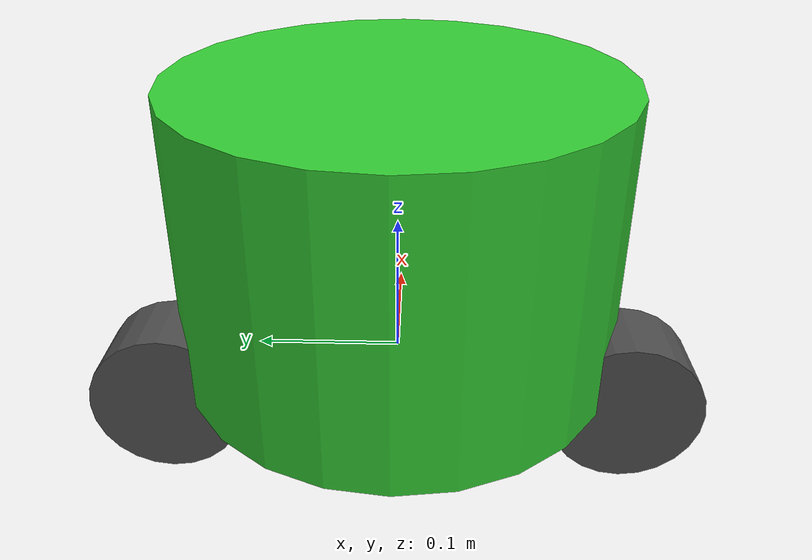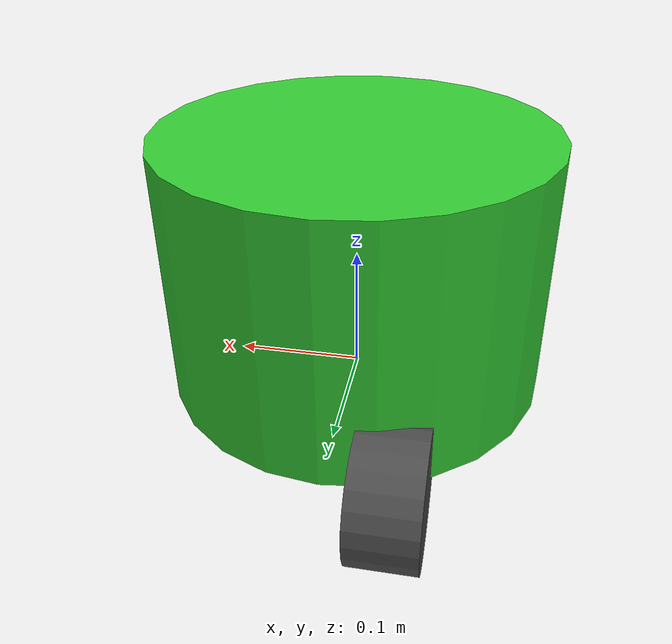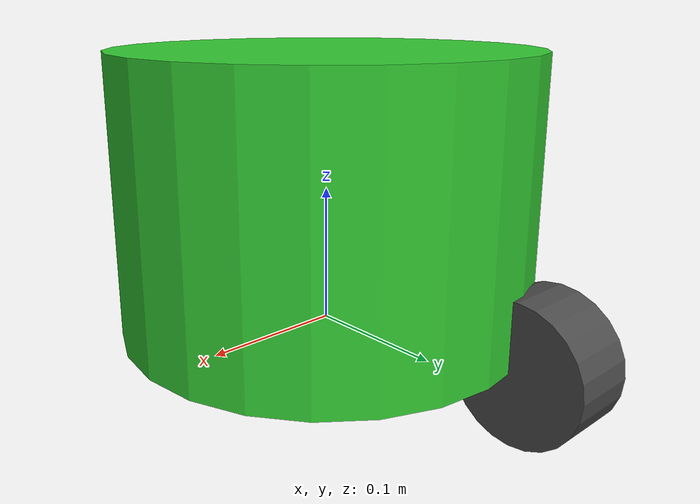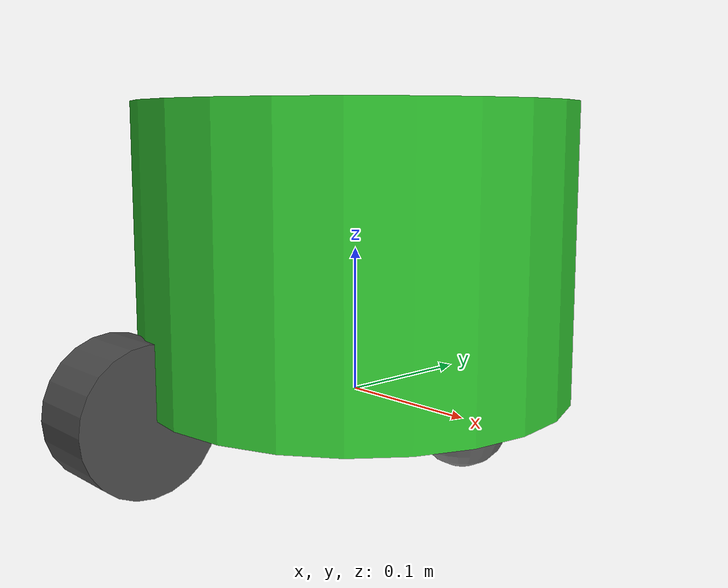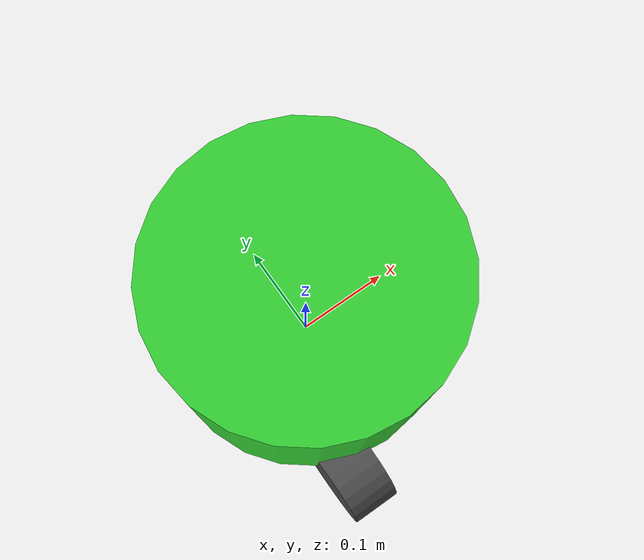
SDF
<?xml version="1.0" ?>
<sdf version="1.7">
  <model name="simple_robot">
    <!-- Base link -->
    <link name="base_link">
      <pose>0 0 0.1 0 0 0</pose>
      <inertial>
        <mass>1.0</mass>
        <inertia>
          <ixx>0.01</ixx>
          <ixy>0</ixy>
          <ixz>0</ixz>
          <iyy>0.01</iyy>
          <iyz>0</iyz>
          <izz>0.01</izz>
        </inertia>
      </inertial>

      <collision name="collision">
        <geometry>
          <cylinder>
            <radius>0.15</radius>
            <length>0.2</length>
          </cylinder>
        </geometry>
      </collision>

      <visual name="visual">
        <geometry>
          <cylinder>
            <radius>0.15</radius>
            <length>0.2</length>
          </cylinder>
        </geometry>
        <material>
          <ambient>0.2 0.8 0.2 1</ambient>
          <diffuse>0.2 0.8 0.2 1</diffuse>
        </material>
      </visual>
    </link>

    <!-- Left wheel -->
    <link name="left_wheel">
      <pose>-0.05 0.15 0 0 1.5707 0</pose>
      <inertial>
        <mass>0.2</mass>
        <inertia>
          <ixx>0.001</ixx>
          <ixy>0</ixy>
          <ixz>0</ixz>
          <iyy>0.001</iyy>
          <iyz>0</iyz>
          <izz>0.001</izz>
        </inertia>
      </inertial>

      <collision name="collision">
        <geometry>
          <cylinder>
            <radius>0.05</radius>
            <length>0.05</length>
          </cylinder>
        </geometry>
      </collision>

      <visual name="visual">
        <geometry>
          <cylinder>
            <radius>0.05</radius>
            <length>0.05</length>
          </cylinder>
        </geometry>
        <material>
          <ambient>0.3 0.3 0.3 1</ambient>
          <diffuse>0.3 0.3 0.3 1</diffuse>
        </material>
      </visual>
    </link>

    <!-- Right wheel -->
    <link name="right_wheel">
      <pose>-0.05 -0.15 0 0 1.5707 0</pose>
      <inertial>
        <mass>0.2</mass>
        <inertia>
          <ixx>0.001</ixx>
          <ixy>0</ixy>
          <ixz>0</ixz>
          <iyy>0.001</iyy>
          <iyz>0</iyz>
          <izz>0.001</izz>
        </inertia>
      </inertial>

      <collision name="collision">
        <geometry>
          <cylinder>
            <radius>0.05</radius>
            <length>0.05</length>
          </cylinder>
        </geometry>
      </collision>

      <visual name="visual">
        <geometry>
          <cylinder>
            <radius>0.05</radius>
            <length>0.05</length>
          </cylinder>
        </geometry>
        <material>
          <ambient>0.3 0.3 0.3 1</ambient>
          <diffuse>0.3 0.3 0.3 1</diffuse>
        </material>
      </visual>
    </link>

    <!-- caster wheel -->
    <link name="caster_wheel">
      <pose>0.1 0 0 0 0 0</pose>
      <inertial>
        <mass>0.05</mass>
        <inertia>
          <ixx>0.0001</ixx>
          <ixy>0</ixy>
          <ixz>0</ixz>
          <iyy>0.0001</iyy>
          <iyz>0</iyz>
          <izz>0.0001</izz>
        </inertia>
      </inertial>

      <collision name="collision">
        <geometry>
          <sphere>
            <radius>0.03</radius>
          </sphere>
        </geometry>
      </collision>

      <visual name="visual">
        <geometry>
          <sphere>
            <radius>0.03</radius>
          </sphere>
        </geometry>
        <material>
          <ambient>0.5 0.5 0.5 1</ambient>
          <diffuse>0.5 0.5 0.5 1</diffuse>
        </material>
      </visual>
    </link>

    <!-- Joints -->
    <joint name="left_wheel_joint" type="continuous">
      <parent>base_link</parent>
      <child>left_wheel</child>
      <axis>
        <xyz>0 0 1</xyz>
        <limit>
          <effort>100</effort>
          <velocity>100</velocity>
        </limit>
      </axis>
    </joint>

    <joint name="right_wheel_joint" type="continuous">
      <parent>base_link</parent>
      <child>right_wheel</child>
      <axis>
        <xyz>0 0 1</xyz>
        <limit>
          <effort>100</effort>
          <velocity>100</velocity>
        </limit>
      </axis>
    </joint>

    <joint name="caster_wheel_joint" type="ball">
      <parent>base_link</parent>
      <child>caster_wheel</child>
    </joint>

    <!-- Differential drive plugin -->
    <plugin name="diff_drive" filename="libgazebo_ros_diff_drive.so">
      <left_joint>left_wheel_joint</left_joint>
      <right_joint>right_wheel_joint</right_joint>
      <wheel_separation>0.3</wheel_separation>
      <wheel_diameter>0.1</wheel_diameter>
      <max_wheel_torque>20</max_wheel_torque>
      <max_wheel_acceleration>1.0</max_wheel_acceleration>
      <command_topic>cmd_vel</command_topic>
      <odometry_topic>odom</odometry_topic>
      <odometry_frame>odom</odometry_frame>
      <robot_base_frame>base_link</robot_base_frame>
      <publish_odom>true</publish_odom>
      <publish_odom_tf>true</publish_odom_tf>
      <publish_wheel_tf>true</publish_wheel_tf>
    </plugin>
  </model>
</sdf>
